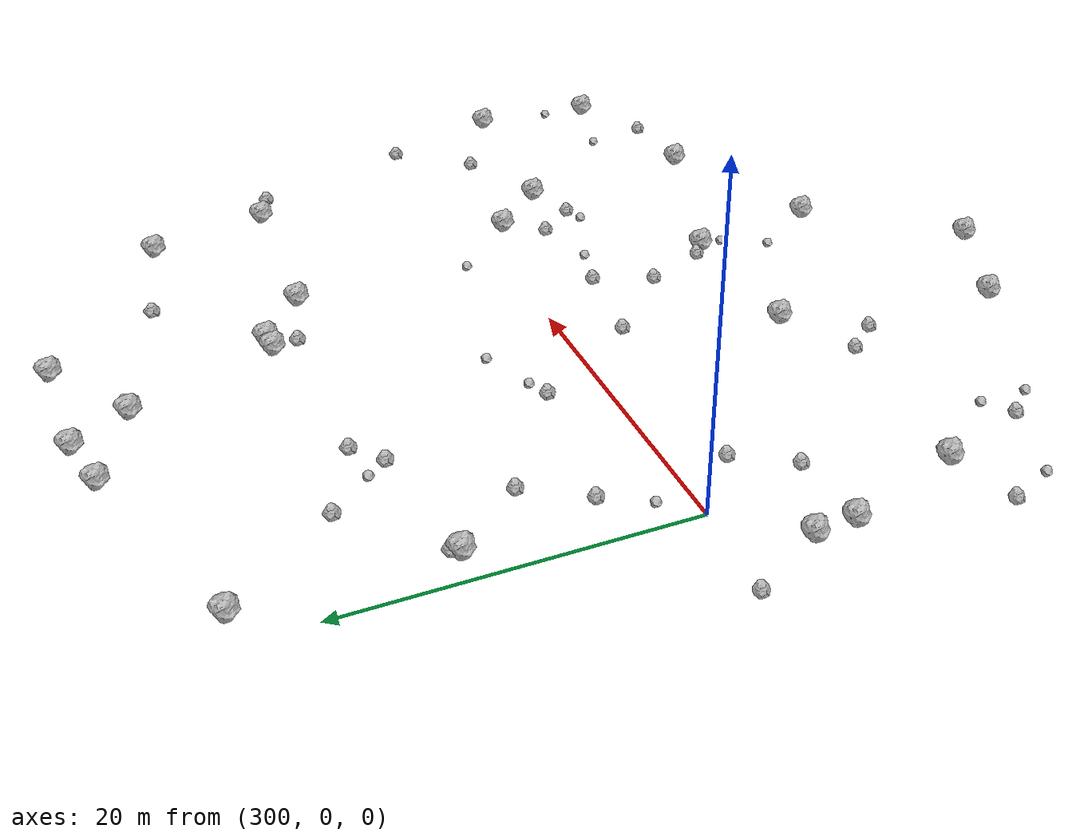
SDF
<sdf version="1.6">
 <world name="default">
  <include><uri>model://sun</uri></include>
  <model name="rock1_8_3">
   <include><uri>model://rock1</uri><pose>302.29751694738064 23.925056366659106 0.5 0 0 0</pose></include>
  </model>
  <model name="rock1_8_4">
   <include><uri>model://rock1</uri><pose>346.54192763832907 -6.077579773340872 0.5 0 0 0</pose></include>
  </model>
  <model name="rock1_8_5">
   <include><uri>model://rock1</uri><pose>296.61365866415593 -4.14609741024687 0.5 0 0 0</pose></include>
  </model>
  <model name="rock1_8_6">
   <include><uri>model://rock1</uri><pose>324.27904175065737 16.15524302134054 0.5 0 0 0</pose></include>
  </model>
  <model name="rock1_8_7">
   <include><uri>model://rock1</uri><pose>314.72580784840557 -12.645210680395223 0.5 0 0 0</pose></include>
  </model>
  <model name="rock1_8_8">
   <include><uri>model://rock1</uri><pose>296.82792062957304 -6.649999924223142 0.5 0 0 0</pose></include>
  </model>
  <model name="rock1_8_9">
   <include><uri>model://rock1</uri><pose>320.0374955235558 24.94881553413412 0.5 0 0 0</pose></include>
  </model>
  <model name="rock1_8_10">
   <include><uri>model://rock1</uri><pose>299.2667094983509 -13.909066864159044 0.5 0 0 0</pose></include>
  </model>
  <model name="rock1_8_11">
   <include><uri>model://rock1</uri><pose>331.54620945966826 -1.6266717966680098 0.5 0 0 0</pose></include>
  </model>
  <model name="rock1_8_12">
   <include><uri>model://rock1</uri><pose>323.11891498581804 16.062124567670402 0.5 0 0 0</pose></include>
  </model>
  <model name="rock1_8_13">
   <include><uri>model://rock1</uri><pose>325.5902705113266 -20.560907949438587 0.5 0 0 0</pose></include>
  </model>
  <model name="rock1_8_14">
   <include><uri>model://rock1</uri><pose>334.8719200711577 -5.142168464523806 0.5 0 0 0</pose></include>
  </model>
  <model name="rock1_8_15">
   <include><uri>model://rock1</uri><pose>345.8956828204585 -13.715193759102604 0.5 0 0 0</pose></include>
  </model>
  <model name="rock1_8_16">
   <include><uri>model://rock1</uri><pose>327.8426999501685 13.304722071717343 0.5 0 0 0</pose></include>
  </model>
  <model name="rock1_8_17">
   <include><uri>model://rock1</uri><pose>337.04566186263287 20.07623463125335 0.5 0 0 0</pose></include>
  </model>
  <model name="rock1_8_18">
   <include><uri>model://rock1</uri><pose>318.04578049823635 28.412303000059723 0.5 0 0 0</pose></include>
  </model>
  <model name="rock1_8_19">
   <include><uri>model://rock1</uri><pose>314.50446664104237 27.687483070216196 0.5 0 0 0</pose></include>
  </model>
  <model name="rock1_8_20">
   <include><uri>model://rock1</uri><pose>335.8148852688613 -16.376511056764276 0.5 0 0 0</pose></include>
  </model>
  <model name="rock1_8_21">
   <include><uri>model://rock1</uri><pose>338.82788946807653 12.609521675931234 0.5 0 0 0</pose></include>
  </model>
  <model name="rock1_8_22">
   <include><uri>model://rock1</uri><pose>302.13911862404063 12.335422276487819 0.5 0 0 0</pose></include>
  </model>
  <model name="rock1_8_23">
   <include><uri>model://rock1</uri><pose>318.9340521646746 -28.797641841370478 0.5 0 0 0</pose></include>
  </model>
  <model name="rock1_8_24">
   <include><uri>model://rock1</uri><pose>325.43012983805545 28.394320415743046 0.5 0 0 0</pose></include>
  </model>
  <model name="rock1_8_25">
   <include><uri>model://rock1</uri><pose>312.30337724459025 -25.849418345426557 0.5 0 0 0</pose></include>
  </model>
  <model name="rock1_8_26">
   <include><uri>model://rock1</uri><pose>324.28500594429386 -12.375519020207182 0.5 0 0 0</pose></include>
  </model>
  <model name="rock2_8_0">
   <include><uri>model://rock2</uri><pose>322.83181520024885 -4.138535239069363 0.3 0 0 0</pose></include>
  </model>
  <model name="rock2_8_1">
   <include><uri>model://rock2</uri><pose>340.2610284433302 -2.7405660512307115 0.3 0 0 0</pose></include>
  </model>
  <model name="rock2_8_2">
   <include><uri>model://rock2</uri><pose>301.6012972650143 -6.361231760635242 0.3 0 0 0</pose></include>
  </model>
  <model name="rock2_8_3">
   <include><uri>model://rock2</uri><pose>323.0883932788461 -11.490149792529394 0.3 0 0 0</pose></include>
  </model>
  <model name="rock2_8_4">
   <include><uri>model://rock2</uri><pose>310.2692600067867 13.472961087588331 0.3 0 0 0</pose></include>
  </model>
  <model name="rock2_8_5">
   <include><uri>model://rock2</uri><pose>323.2040462844001 14.53659963083772 0.3 0 0 0</pose></include>
  </model>
  <model name="rock2_8_6">
   <include><uri>model://rock2</uri><pose>303.6962015386111 -3.118813503334124 0.3 0 0 0</pose></include>
  </model>
  <model name="rock2_8_7">
   <include><uri>model://rock2</uri><pose>329.6025403776573 -3.874512599373901 0.3 0 0 0</pose></include>
  </model>
  <model name="rock2_8_8">
   <include><uri>model://rock2</uri><pose>302.22778400018024 12.80577302449462 0.3 0 0 0</pose></include>
  </model>
  <model name="rock2_8_9">
   <include><uri>model://rock2</uri><pose>340.7081934369987 11.757299286404916 0.3 0 0 0</pose></include>
  </model>
  <model name="rock2_8_10">
   <include><uri>model://rock2</uri><pose>329.55291093953144 21.699859705799028 0.3 0 0 0</pose></include>
  </model>
  <model name="rock2_8_11">
   <include><uri>model://rock2</uri><pose>331.4778819449333 -6.175260084206723 0.3 0 0 0</pose></include>
  </model>
  <model name="rock2_8_12">
   <include><uri>model://rock2</uri><pose>321.4509275361411 -7.665161228990172 0.3 0 0 0</pose></include>
  </model>
  <model name="rock2_8_13">
   <include><uri>model://rock2</uri><pose>320.6231262623062 25.05210287058719 0.3 0 0 0</pose></include>
  </model>
  <model name="rock2_8_14">
   <include><uri>model://rock2</uri><pose>312.54485114813343 3.297134557050491 0.3 0 0 0</pose></include>
  </model>
  <model name="rock2_8_15">
   <include><uri>model://rock2</uri><pose>343.75043313171 1.5641103923024282 0.3 0 0 0</pose></include>
  </model>
  <model name="rock2_8_16">
   <include><uri>model://rock2</uri><pose>307.1099269532842 17.314874505459834 0.3 0 0 0</pose></include>
  </model>
  <model name="rock2_8_17">
   <include><uri>model://rock2</uri><pose>301.0108026091999 -19.454140759369988 0.3 0 0 0</pose></include>
  </model>
  <model name="rock2_8_18">
   <include><uri>model://rock2</uri><pose>294.91464288232004 -14.922254407977466 0.3 0 0 0</pose></include>
  </model>
  <model name="rock2_8_19">
   <include><uri>model://rock2</uri><pose>340.895927894984 -15.990192745311022 0.3 0 0 0</pose></include>
  </model>
  <model name="rock2_8_20">
   <include><uri>model://rock2</uri><pose>316.9898748013081 -3.397691412777199 0.3 0 0 0</pose></include>
  </model>
  <model name="rock2_8_21">
   <include><uri>model://rock2</uri><pose>293.8279479731397 0.4296983388768254 0.3 0 0 0</pose></include>
  </model>
  <model name="rock2_8_22">
   <include><uri>model://rock2</uri><pose>303.1737871677071 4.647438216344007 0.3 0 0 0</pose></include>
  </model>
  <model name="rock2_8_23">
   <include><uri>model://rock2</uri><pose>309.88629203017246 -14.879527185190435 0.3 0 0 0</pose></include>
  </model>
  <model name="rock2_8_24">
   <include><uri>model://rock2</uri><pose>305.42472826250486 8.135792498459487 0.3 0 0 0</pose></include>
  </model>
  <model name="rock2_8_25">
   <include><uri>model://rock2</uri><pose>311.99531874884235 14.941015179595794 0.3 0 0 0</pose></include>
  </model>
  <model name="rock2_8_26">
   <include><uri>model://rock2</uri><pose>311.5593226158154 -16.868291767939223 0.3 0 0 0</pose></include>
  </model>
  <model name="rock3_8_0">
   <include><uri>model://rock3</uri><pose>302.58184574955715 -21.311082222195257 0.2 0 0 0</pose></include>
  </model>
  <model name="rock3_8_1">
   <include><uri>model://rock3</uri><pose>345.8745797960338 -10.833836804564434 0.2 0 0 0</pose></include>
  </model>
  <model name="rock3_8_2">
   <include><uri>model://rock3</uri><pose>330.35389180429326 -6.7248951714406715 0.2 0 0 0</pose></include>
  </model>
  <model name="rock3_8_3">
   <include><uri>model://rock3</uri><pose>325.7518597072311 -4.9596106841760665 0.2 0 0 0</pose></include>
  </model>
  <model name="rock3_8_4">
   <include><uri>model://rock3</uri><pose>301.704703056029 1.9602326721579182 0.2 0 0 0</pose></include>
  </model>
  <model name="rock3_8_5">
   <include><uri>model://rock3</uri><pose>327.30360250854926 2.411710597456853 0.2 0 0 0</pose></include>
  </model>
  <model name="rock3_8_6">
   <include><uri>model://rock3</uri><pose>317.14574613293837 5.090183470253102 0.2 0 0 0</pose></include>
  </model>
  <model name="rock3_8_7">
   <include><uri>model://rock3</uri><pose>296.11658276607494 -17.762006454305677 0.2 0 0 0</pose></include>
  </model>
  <model name="rock3_8_8">
   <include><uri>model://rock3</uri><pose>313.8879009252341 3.8051998422000466 0.2 0 0 0</pose></include>
  </model>
  <model name="rock3_8_9">
   <include><uri>model://rock3</uri><pose>340.3145135413974 -12.229403424217157 0.2 0 0 0</pose></include>
  </model>
  <model name="rock3_8_10">
   <include><uri>model://rock3</uri><pose>302.61346411484004 -18.36787928747237 0.2 0 0 0</pose></include>
  </model>
  <model name="rock3_8_11">
   <include><uri>model://rock3</uri><pose>322.60472085926676 -16.410263285246476 0.2 0 0 0</pose></include>
  </model>
  <model name="rock3_8_12">
   <include><uri>model://rock3</uri><pose>309.37325604914747 14.653857394716013 0.2 0 0 0</pose></include>
  </model>
  <model name="rock3_8_13">
   <include><uri>model://rock3</uri><pose>324.0671032022648 -13.775958556402408 0.2 0 0 0</pose></include>
  </model>
 </world>
</sdf>
